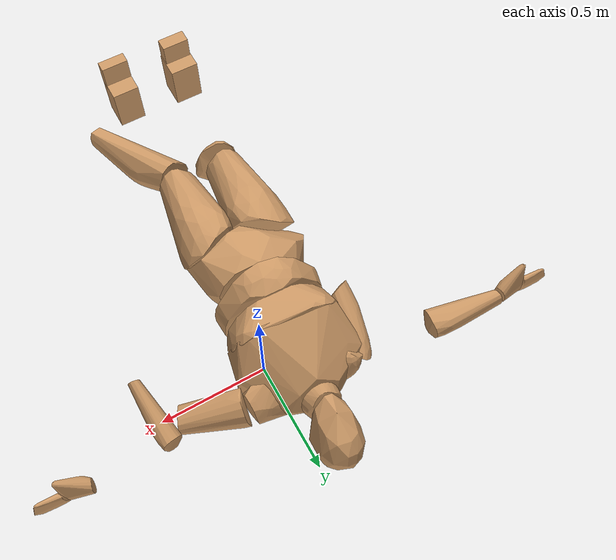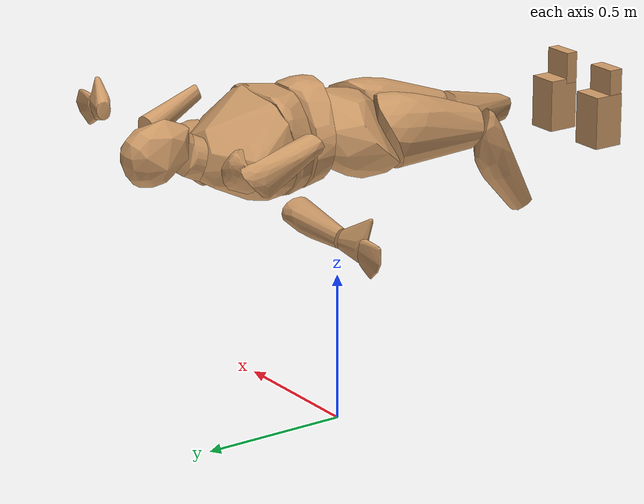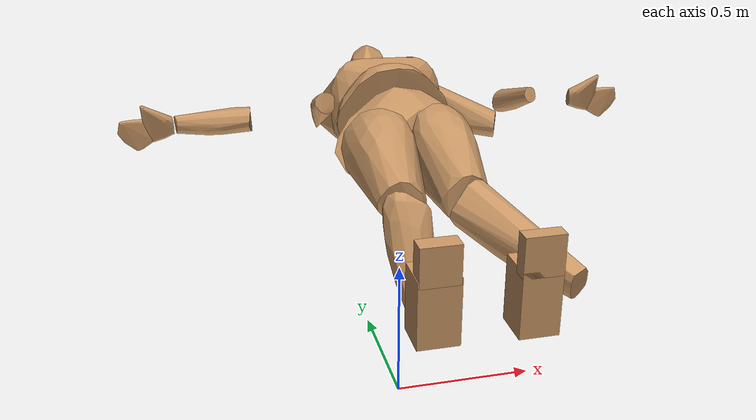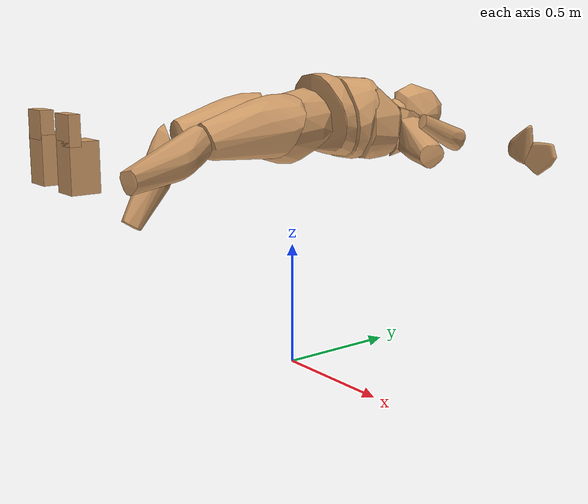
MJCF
<?xml version='1.0' encoding='utf-8'?>
<mujoco model="humanoid">
  <compiler coordinate="local" meshdir="asset/smpl_meshes/geom" />
  <default>
    <joint damping="0.0" armature="0.1" stiffness="10" limited="true" />
    <geom conaffinity="1" condim="3" contype="7" margin="0.001" rgba="0.8 0.6 .4 1" />
  <joint damping="0.01" armature="0.1" stiffness="10" limited="true" /><geom conaffinity="1" condim="3" contype="7" margin="0.001" rgba="0.8 0.6 .4 1" type="box" size="0.01 0.01 0.01" /><joint damping="1" armature="0.1" stiffness="10" /></default>
  <asset>
    <texture type="skybox" builtin="gradient" rgb1=".4 .5 .6" rgb2="0 0 0" width="100" height="100" />
    <texture builtin="flat" height="1278" mark="cross" markrgb="1 1 1" name="texgeom" random="0.01" rgb1="0.8 0.6 0.4" rgb2="0.8 0.6 0.4" type="cube" width="127" />
    <texture builtin="checker" height="100" name="texplane" rgb1="0 0 0" rgb2="0.8 0.8 0.8" type="2d" width="100" />
    <material name="MatPlane" reflectance="0.5" shininess="1" specular="1" texrepeat="60 60" texture="texplane" />
    <material name="geom" texture="texgeom" texuniform="true" />
    <mesh file="Pelvis.stl" name="Pelvis_mesh" />
    <mesh file="L_Hip.stl" name="L_Hip_mesh" />
    <mesh file="R_Hip.stl" name="R_Hip_mesh" />
    <mesh file="Torso.stl" name="Torso_mesh" />
    <mesh file="L_Knee.stl" name="L_Knee_mesh" />
    <mesh file="R_Knee.stl" name="R_Knee_mesh" />
    <mesh file="Spine.stl" name="Spine_mesh" />
    <mesh file="L_Ankle.stl" name="L_Ankle_mesh" />
    <mesh file="R_Ankle.stl" name="R_Ankle_mesh" />
    <mesh file="Chest.stl" name="Chest_mesh" />
    <mesh file="L_Toe.stl" name="L_Toe_mesh" />
    <mesh file="R_Toe.stl" name="R_Toe_mesh" />
    <mesh file="Neck.stl" name="Neck_mesh" />
    <mesh file="L_Thorax.stl" name="L_Thorax_mesh" />
    <mesh file="R_Thorax.stl" name="R_Thorax_mesh" />
    <mesh file="Head.stl" name="Head_mesh" />
    <mesh file="L_Shoulder.stl" name="L_Shoulder_mesh" />
    <mesh file="R_Shoulder.stl" name="R_Shoulder_mesh" />
    <mesh file="L_Elbow.stl" name="L_Elbow_mesh" />
    <mesh file="R_Elbow.stl" name="R_Elbow_mesh" />
    <mesh file="L_Wrist.stl" name="L_Wrist_mesh" />
    <mesh file="R_Wrist.stl" name="R_Wrist_mesh" />
    <mesh file="L_Hand.stl" name="L_Hand_mesh" />
    <mesh file="R_Hand.stl" name="R_Hand_mesh" />
  </asset>
  <worldbody>
    <body name="Pelvis" pos="0 0 1.0">
      <freejoint name="Pelvis" />
      <geom type="mesh" mesh="Pelvis_mesh" density="1000" contype="1" conaffinity="1" condim="3" margin="0.001" />
      <body name="L_Hip" pos="0.0748 -0.0975 -0.0052">
        <joint name="L_Hip_x" type="hinge" pos="0 0 0" axis="1 0 0" user="800 80 1 500" armature="0.1" range="-120.0000 30.0000" damping="0.1" stiffness="10" limited="true" />
        <joint name="L_Hip_y" type="hinge" pos="0 0 0" axis="0 1 0" user="800 80 1 500" armature="0.1" range="-30.0000 45.0000" damping="0.1" stiffness="10" limited="true" />
        <joint name="L_Hip_z" type="hinge" pos="0 0 0" axis="0 0 1" user="800 80 1 500" armature="0.1" range="-15.0000 45.0000" damping="0.1" stiffness="10" limited="true" />
        <geom type="mesh" mesh="L_Hip_mesh" density="1000" contype="1" conaffinity="1" condim="3" margin="0.001" />
        <body name="L_Knee" pos="0.0117 -0.3951 -0.0362">
          <joint name="L_Knee_x" type="hinge" pos="0 0 0" axis="1 0 0" user="800 80 1 500" armature="0.1" range="-10.0000 135.0000" damping="0.1" stiffness="10" limited="true" />
          <joint name="L_Knee_y" type="hinge" pos="0 0 0" axis="0 1 0" user="800 80 1 500" armature="0.1" range="-5.0000 5.0000" damping="0.1" stiffness="10" limited="true" />
          <joint name="L_Knee_z" type="hinge" pos="0 0 0" axis="0 0 1" user="800 80 1 500" armature="0.1" range="-5.0000 5.0000" damping="0.1" stiffness="10" limited="true" />
          <geom type="mesh" mesh="L_Knee_mesh" density="1000" contype="1" conaffinity="1" condim="3" margin="0.001" />
          <body name="L_Ankle" pos="-0.0329 -0.428 -0.0721">
            <joint name="L_Ankle_x" type="hinge" pos="0 0 0" axis="1 0 0" user="800 80 1 500" armature="0.1" range="-30.0000 45.0000" damping="0.1" stiffness="10" limited="true" />
            <joint name="L_Ankle_y" type="hinge" pos="0 0 0" axis="0 1 0" user="800 80 1 500" armature="0.1" range="-20.0000 20.0000" damping="0.1" stiffness="10" limited="true" />
            <joint name="L_Ankle_z" type="hinge" pos="0 0 0" axis="0 0 1" user="800 80 1 500" armature="0.1" range="-15.0000 15.0000" damping="0.1" stiffness="10" limited="true" />
            <geom density="442.116764" type="box" pos="0.0191 -0.0303 0.0216" size="0.0506 0.0525 0.0877" quat="1.0000 0.0000 0.0000 0.0000" />
            <body name="L_Toe" pos="0.0224 -0.0685 0.1203">
              <joint name="L_Toe_x" type="hinge" pos="0 0 0" axis="1 0 0" user="500 50 1 500" armature="0.1" range="-10.0000 10.0000" damping="0.1" stiffness="10" limited="true" />
              <joint name="L_Toe_y" type="hinge" pos="0 0 0" axis="0 1 0" user="500 50 1 500" armature="0.1" range="-10.0000 10.0000" damping="0.1" stiffness="10" limited="true" />
              <joint name="L_Toe_z" type="hinge" pos="0 0 0" axis="0 0 1" user="500 50 1 500" armature="0.1" range="-10.0000 10.0000" damping="0.1" stiffness="10" limited="true" />
              <geom density="391.513587" type="box" pos="-0.0034 0.0066 0.0252" size="0.0508 0.0209 0.0529" quat="1.0000 0.0000 0.0000 0.0000" />
            </body>
          </body>
        </body>
      </body>
      <body name="R_Hip" pos="-0.0824 -0.0905 -0.0033">
        <joint name="R_Hip_x" type="hinge" pos="0 0 0" axis="1 0 0" user="800 80 1 500" armature="0.1" range="-120.0000 30.0000" damping="0.1" stiffness="10" limited="true" />
        <joint name="R_Hip_y" type="hinge" pos="0 0 0" axis="0 1 0" user="800 80 1 500" armature="0.1" range="-45.0000 30.0000" damping="0.1" stiffness="10" limited="true" />
        <joint name="R_Hip_z" type="hinge" pos="0 0 0" axis="0 0 1" user="800 80 1 500" armature="0.1" range="-45.0000 15.0000" damping="0.1" stiffness="10" limited="true" />
        <geom type="mesh" mesh="R_Hip_mesh" density="1000" contype="1" conaffinity="1" condim="3" margin="0.001" />
        <body name="R_Knee" pos="-0.057 -0.3992 -0.0398">
          <joint name="R_Knee_x" type="hinge" pos="0 0 0" axis="1 0 0" user="800 80 1 500" armature="0.1" range="-10.0000 135.0000" damping="0.1" stiffness="10" limited="true" />
          <joint name="R_Knee_y" type="hinge" pos="0 0 0" axis="0 1 0" user="800 80 1 500" armature="0.1" range="-5.0000 5.0000" damping="0.1" stiffness="10" limited="true" />
          <joint name="R_Knee_z" type="hinge" pos="0 0 0" axis="0 0 1" user="800 80 1 500" armature="0.1" range="-5.0000 5.0000" damping="0.1" stiffness="10" limited="true" />
          <geom type="mesh" mesh="R_Knee_mesh" density="1000" contype="1" conaffinity="1" condim="3" margin="0.001" />
          <body name="R_Ankle" pos="-0.0049 -0.4315 -0.0702">
            <joint name="R_Ankle_x" type="hinge" pos="0 0 0" axis="1 0 0" user="800 80 1 500" armature="0.1" range="-30.0000 45.0000" damping="0.1" stiffness="10" limited="true" />
            <joint name="R_Ankle_y" type="hinge" pos="0 0 0" axis="0 1 0" user="800 80 1 500" armature="0.1" range="-20.0000 20.0000" damping="0.1" stiffness="10" limited="true" />
            <joint name="R_Ankle_z" type="hinge" pos="0 0 0" axis="0 0 1" user="800 80 1 500" armature="0.1" range="-15.0000 15.0000" damping="0.1" stiffness="10" limited="true" />
            <geom density="420.537497" type="box" pos="-0.0271 -0.0214 0.0231" size="0.0534 0.0521 0.0886" quat="1.0000 0.0000 0.0000 0.0000" />
            <body name="R_Toe" pos="-0.0354 -0.0572 0.1241">
              <joint name="R_Toe_x" type="hinge" pos="0 0 0" axis="1 0 0" user="500 50 1 500" armature="0.1" range="-10.0000 10.0000" damping="0.1" stiffness="10" limited="true" />
              <joint name="R_Toe_y" type="hinge" pos="0 0 0" axis="0 1 0" user="500 50 1 500" armature="0.1" range="-10.0000 10.0000" damping="0.1" stiffness="10" limited="true" />
              <joint name="R_Toe_z" type="hinge" pos="0 0 0" axis="0 0 1" user="500 50 1 500" armature="0.1" range="-10.0000 10.0000" damping="0.1" stiffness="10" limited="true" />
              <geom density="411.118244" type="box" pos="0.0084 0.0083 0.0211" size="0.0507 0.0247 0.0511" quat="1.0000 0.0000 0.0000 0.0000" />
            </body>
          </body>
        </body>
      </body>
      <body name="Torso" pos="0.0035 0.1118 -0.0291">
        <joint name="Torso_x" type="hinge" pos="0 0 0" axis="1 0 0" user="1000 100 1 500" armature="0.1" range="-25.0000 25.0000" damping="0.1" stiffness="10" limited="true" />
        <joint name="Torso_y" type="hinge" pos="0 0 0" axis="0 1 0" user="1000 100 1 500" armature="0.1" range="-15.0000 15.0000" damping="0.1" stiffness="10" limited="true" />
        <joint name="Torso_z" type="hinge" pos="0 0 0" axis="0 0 1" user="1000 100 1 500" armature="0.1" range="-25.0000 25.0000" damping="0.1" stiffness="10" limited="true" />
        <geom type="mesh" mesh="Torso_mesh" density="1000" contype="1" conaffinity="1" condim="3" margin="0.001" />
        <body name="Spine" pos="0.0094 0.1161 -0.0009">
          <joint name="Spine_x" type="hinge" pos="0 0 0" axis="1 0 0" user="1000 100 1 500" armature="0.1" range="-30.0000 30.0000" damping="0.1" stiffness="10" limited="true" />
          <joint name="Spine_y" type="hinge" pos="0 0 0" axis="0 1 0" user="1000 100 1 500" armature="0.1" range="-20.0000 20.0000" damping="0.1" stiffness="10" limited="true" />
          <joint name="Spine_z" type="hinge" pos="0 0 0" axis="0 0 1" user="1000 100 1 500" armature="0.1" range="-30.0000 30.0000" damping="0.1" stiffness="10" limited="true" />
          <geom type="mesh" mesh="Spine_mesh" density="1000" contype="1" conaffinity="1" condim="3" margin="0.001" />
          <body name="Chest" pos="0.0041 0.049 0.035">
            <joint name="Chest_x" type="hinge" pos="0 0 0" axis="1 0 0" user="1000 100 1 500" armature="0.1" range="-20.0000 20.0000" damping="0.1" stiffness="10" limited="true" />
            <joint name="Chest_y" type="hinge" pos="0 0 0" axis="0 1 0" user="1000 100 1 500" armature="0.1" range="-15.0000 15.0000" damping="0.1" stiffness="10" limited="true" />
            <joint name="Chest_z" type="hinge" pos="0 0 0" axis="0 0 1" user="1000 100 1 500" armature="0.1" range="-25.0000 25.0000" damping="0.1" stiffness="10" limited="true" />
            <geom type="mesh" mesh="Chest_mesh" density="1000" contype="1" conaffinity="1" condim="3" margin="0.001" />
            <body name="Neck" pos="0.0084 0.231 -0.0381">
              <joint name="Neck_x" type="hinge" pos="0 0 0" axis="1 0 0" user="500 50 1 250" armature="0.1" range="-40.0000 50.0000" damping="0.1" stiffness="10" limited="true" />
              <joint name="Neck_y" type="hinge" pos="0 0 0" axis="0 1 0" user="500 50 1 250" armature="0.1" range="-35.0000 35.0000" damping="0.1" stiffness="10" limited="true" />
              <joint name="Neck_z" type="hinge" pos="0 0 0" axis="0 0 1" user="500 50 1 250" armature="0.1" range="-70.0000 70.0000" damping="0.1" stiffness="10" limited="true" />
              <geom type="mesh" mesh="Neck_mesh" density="1000" contype="1" conaffinity="1" condim="3" margin="0.001" />
              <body name="Head" pos="0.0044 0.0633 0.0616">
                <joint name="Head_x" type="hinge" pos="0 0 0" axis="1 0 0" user="500 50 1 250" armature="0.1" range="-30.0000 30.0000" damping="0.1" stiffness="10" limited="true" />
                <joint name="Head_y" type="hinge" pos="0 0 0" axis="0 1 0" user="500 50 1 250" armature="0.1" range="-25.0000 25.0000" damping="0.1" stiffness="10" limited="true" />
                <joint name="Head_z" type="hinge" pos="0 0 0" axis="0 0 1" user="500 50 1 250" armature="0.1" range="-50.0000 50.0000" damping="0.1" stiffness="10" limited="true" />
                <geom type="mesh" mesh="Head_mesh" density="1000" contype="1" conaffinity="1" condim="3" margin="0.001" />
              </body>
            </body>
            <body name="L_Thorax" pos="0.096 0.1277 -0.0344">
              <joint name="L_Thorax_x" type="hinge" pos="0 0 0" axis="1 0 0" user="500 50 1 500" armature="0.1" range="-45.0000 45.0000" damping="0.1" stiffness="10" limited="true" />
              <joint name="L_Thorax_y" type="hinge" pos="0 0 0" axis="0 1 0" user="500 50 1 500" armature="0.1" range="-30.0000 30.0000" damping="0.1" stiffness="10" limited="true" />
              <joint name="L_Thorax_z" type="hinge" pos="0 0 0" axis="0 0 1" user="500 50 1 500" armature="0.1" range="-40.0000 40.0000" damping="0.1" stiffness="10" limited="true" />
              <geom type="mesh" mesh="L_Thorax_mesh" density="1000" contype="1" conaffinity="1" condim="3" margin="0.001" />
              <body name="L_Shoulder" pos="0.1002 0.0314 -0.0112">
                <joint name="L_Shoulder_x" type="hinge" pos="0 0 0" axis="1 0 0" user="500 50 1 500" armature="0.1" range="-90.0000 90.0000" damping="0.1" stiffness="10" limited="true" />
                <joint name="L_Shoulder_y" type="hinge" pos="0 0 0" axis="0 1 0" user="500 50 1 500" armature="0.1" range="-135.0000 30.0000" damping="0.1" stiffness="10" limited="true" />
                <joint name="L_Shoulder_z" type="hinge" pos="0 0 0" axis="0 0 1" user="500 50 1 500" armature="0.1" range="-40.0000 120.0000" damping="0.1" stiffness="10" limited="true" />
                <geom type="mesh" mesh="L_Shoulder_mesh" density="1000" contype="1" conaffinity="1" condim="3" margin="0.001" />
                <body name="L_Elbow" pos="0.2827 -0.0271 -0.032">
                  <joint name="L_Elbow_x" type="hinge" pos="0 0 0" axis="1 0 0" user="500 50 1 150" armature="0.1" range="-5.0000 5.0000" damping="0.1" stiffness="10" limited="true" />
                  <joint name="L_Elbow_y" type="hinge" pos="0 0 0" axis="0 1 0" user="500 50 1 150" armature="0.1" range="-135.0000 5.0000" damping="0.1" stiffness="10" limited="true" />
                  <joint name="L_Elbow_z" type="hinge" pos="0 0 0" axis="0 0 1" user="500 50 1 150" armature="0.1" range="-5.0000 5.0000" damping="0.1" stiffness="10" limited="true" />
                  <geom type="mesh" mesh="L_Elbow_mesh" density="1000" contype="1" conaffinity="1" condim="3" margin="0.001" />
                  <body name="L_Wrist" pos="0.2663 -0.0003 0.0051">
                    <joint name="L_Wrist_x" type="hinge" pos="0 0 0" axis="1 0 0" user="300 30 1 150" armature="0.1" range="-20.0000 45.0000" damping="0.1" stiffness="10" limited="true" />
                    <joint name="L_Wrist_y" type="hinge" pos="0 0 0" axis="0 1 0" user="300 30 1 150" armature="0.1" range="-70.0000 70.0000" damping="0.1" stiffness="10" limited="true" />
                    <joint name="L_Wrist_z" type="hinge" pos="0 0 0" axis="0 0 1" user="300 30 1 150" armature="0.1" range="-30.0000 30.0000" damping="0.1" stiffness="10" limited="true" />
                    <geom type="mesh" mesh="L_Wrist_mesh" density="1000" contype="1" conaffinity="1" condim="3" margin="0.001" />
                    <body name="L_Hand" pos="0.0885 -0.0133 -0.0145">
                      <joint name="L_Hand_x" type="hinge" pos="0 0 0" axis="1 0 0" user="300 30 1 150" armature="0.1" range="-45.0000 45.0000" damping="0.1" stiffness="10" limited="true" />
                      <joint name="L_Hand_y" type="hinge" pos="0 0 0" axis="0 1 0" user="300 30 1 150" armature="0.1" range="-20.0000 20.0000" damping="0.1" stiffness="10" limited="true" />
                      <joint name="L_Hand_z" type="hinge" pos="0 0 0" axis="0 0 1" user="300 30 1 150" armature="0.1" range="-20.0000 20.0000" damping="0.1" stiffness="10" limited="true" />
                      <geom type="mesh" mesh="L_Hand_mesh" density="1000" contype="1" conaffinity="1" condim="3" margin="0.001" />
                    </body>
                  </body>
                </body>
              </body>
            </body>
            <body name="R_Thorax" pos="-0.0845 0.1345 -0.0416">
              <joint name="R_Thorax_x" type="hinge" pos="0 0 0" axis="1 0 0" user="500 50 1 150" armature="0.1" range="-45.0000 45.0000" damping="0.1" stiffness="10" limited="true" />
              <joint name="R_Thorax_y" type="hinge" pos="0 0 0" axis="0 1 0" user="500 50 1 150" armature="0.1" range="-30.0000 30.0000" damping="0.1" stiffness="10" limited="true" />
              <joint name="R_Thorax_z" type="hinge" pos="0 0 0" axis="0 0 1" user="500 50 1 150" armature="0.1" range="-40.0000 40.0000" damping="0.1" stiffness="10" limited="true" />
              <geom type="mesh" mesh="R_Thorax_mesh" density="1000" contype="1" conaffinity="1" condim="3" margin="0.001" />
              <body name="R_Shoulder" pos="-0.0981 0.0419 -0.0135">
                <joint name="R_Shoulder_x" type="hinge" pos="0 0 0" axis="1 0 0" user="500 50 1 250" armature="0.1" range="-90.0000 90.0000" damping="0.1" stiffness="10" limited="true" />
                <joint name="R_Shoulder_y" type="hinge" pos="0 0 0" axis="0 1 0" user="500 50 1 250" armature="0.1" range="-30.0000 135.0000" damping="0.1" stiffness="10" limited="true" />
                <joint name="R_Shoulder_z" type="hinge" pos="0 0 0" axis="0 0 1" user="500 50 1 250" armature="0.1" range="-120.0000 40.0000" damping="0.1" stiffness="10" limited="true" />
                <geom type="mesh" mesh="R_Shoulder_mesh" density="1000" contype="1" conaffinity="1" condim="3" margin="0.001" />
                <body name="R_Elbow" pos="-0.2746 -0.0005 -0.0322">
                  <joint name="R_Elbow_x" type="hinge" pos="0 0 0" axis="1 0 0" user="500 50 1 150" armature="0.1" range="-5.0000 5.0000" damping="0.1" stiffness="10" limited="true" />
                  <joint name="R_Elbow_y" type="hinge" pos="0 0 0" axis="0 1 0" user="500 50 1 150" armature="0.1" range="-5.0000 135.0000" damping="0.1" stiffness="10" limited="true" />
                  <joint name="R_Elbow_z" type="hinge" pos="0 0 0" axis="0 0 1" user="500 50 1 150" armature="0.1" range="-5.0000 5.0000" damping="0.1" stiffness="10" limited="true" />
                  <geom type="mesh" mesh="R_Elbow_mesh" density="1000" contype="1" conaffinity="1" condim="3" margin="0.001" />
                  <body name="R_Wrist" pos="-0.2695 0.0251 -0.0046">
                    <joint name="R_Wrist_x" type="hinge" pos="0 0 0" axis="1 0 0" user="300 30 1 150" armature="0.1" range="-20.0000 45.0000" damping="0.1" stiffness="10" limited="true" />
                    <joint name="R_Wrist_y" type="hinge" pos="0 0 0" axis="0 1 0" user="300 30 1 150" armature="0.1" range="-70.0000 70.0000" damping="0.1" stiffness="10" limited="true" />
                    <joint name="R_Wrist_z" type="hinge" pos="0 0 0" axis="0 0 1" user="300 30 1 150" armature="0.1" range="-30.0000 30.0000" damping="0.1" stiffness="10" limited="true" />
                    <geom type="mesh" mesh="R_Wrist_mesh" density="1000" contype="1" conaffinity="1" condim="3" margin="0.001" />
                    <body name="R_Hand" pos="-0.0886 -0.0027 -0.0128">
                      <joint name="R_Hand_x" type="hinge" pos="0 0 0" axis="1 0 0" user="300 30 1 150" armature="0.1" range="-45.0000 45.0000" damping="0.1" stiffness="10" limited="true" />
                      <joint name="R_Hand_y" type="hinge" pos="0 0 0" axis="0 1 0" user="300 30 1 150" armature="0.1" range="-20.0000 20.0000" damping="0.1" stiffness="10" limited="true" />
                      <joint name="R_Hand_z" type="hinge" pos="0 0 0" axis="0 0 1" user="300 30 1 150" armature="0.1" range="-20.0000 20.0000" damping="0.1" stiffness="10" limited="true" />
                      <geom type="mesh" mesh="R_Hand_mesh" density="1000" contype="1" conaffinity="1" condim="3" margin="0.001" />
                    </body>
                  </body>
                </body>
              </body>
            </body>
          </body>
        </body>
      </body>
    </body>
  </worldbody>
  <actuator>
    <motor name="L_Hip_x" joint="L_Hip_x" gear="1" ctrlrange="-200 200" />
    <motor name="L_Hip_y" joint="L_Hip_y" gear="1" ctrlrange="-200 200" />
    <motor name="L_Hip_z" joint="L_Hip_z" gear="1" ctrlrange="-200 200" />
    <motor name="L_Knee_x" joint="L_Knee_x" gear="1" ctrlrange="-200 200" />
    <motor name="L_Knee_y" joint="L_Knee_y" gear="1" ctrlrange="-200 200" />
    <motor name="L_Knee_z" joint="L_Knee_z" gear="1" ctrlrange="-200 200" />
    <motor name="L_Ankle_x" joint="L_Ankle_x" gear="1" ctrlrange="-200 200" />
    <motor name="L_Ankle_y" joint="L_Ankle_y" gear="1" ctrlrange="-200 200" />
    <motor name="L_Ankle_z" joint="L_Ankle_z" gear="1" ctrlrange="-200 200" />
    <motor name="L_Toe_x" joint="L_Toe_x" gear="1" ctrlrange="-200 200" />
    <motor name="L_Toe_y" joint="L_Toe_y" gear="1" ctrlrange="-200 200" />
    <motor name="L_Toe_z" joint="L_Toe_z" gear="1" ctrlrange="-200 200" />
    <motor name="R_Hip_x" joint="R_Hip_x" gear="1" ctrlrange="-200 200" />
    <motor name="R_Hip_y" joint="R_Hip_y" gear="1" ctrlrange="-200 200" />
    <motor name="R_Hip_z" joint="R_Hip_z" gear="1" ctrlrange="-200 200" />
    <motor name="R_Knee_x" joint="R_Knee_x" gear="1" ctrlrange="-200 200" />
    <motor name="R_Knee_y" joint="R_Knee_y" gear="1" ctrlrange="-200 200" />
    <motor name="R_Knee_z" joint="R_Knee_z" gear="1" ctrlrange="-200 200" />
    <motor name="R_Ankle_x" joint="R_Ankle_x" gear="1" ctrlrange="-200 200" />
    <motor name="R_Ankle_y" joint="R_Ankle_y" gear="1" ctrlrange="-200 200" />
    <motor name="R_Ankle_z" joint="R_Ankle_z" gear="1" ctrlrange="-200 200" />
    <motor name="R_Toe_x" joint="R_Toe_x" gear="1" ctrlrange="-200 200" />
    <motor name="R_Toe_y" joint="R_Toe_y" gear="1" ctrlrange="-200 200" />
    <motor name="R_Toe_z" joint="R_Toe_z" gear="1" ctrlrange="-200 200" />
    <motor name="Torso_x" joint="Torso_x" gear="1" ctrlrange="-200 200" />
    <motor name="Torso_y" joint="Torso_y" gear="1" ctrlrange="-200 200" />
    <motor name="Torso_z" joint="Torso_z" gear="1" ctrlrange="-200 200" />
    <motor name="Spine_x" joint="Spine_x" gear="1" ctrlrange="-200 200" />
    <motor name="Spine_y" joint="Spine_y" gear="1" ctrlrange="-200 200" />
    <motor name="Spine_z" joint="Spine_z" gear="1" ctrlrange="-200 200" />
    <motor name="Chest_x" joint="Chest_x" gear="1" ctrlrange="-200 200" />
    <motor name="Chest_y" joint="Chest_y" gear="1" ctrlrange="-200 200" />
    <motor name="Chest_z" joint="Chest_z" gear="1" ctrlrange="-200 200" />
    <motor name="Neck_x" joint="Neck_x" gear="1" ctrlrange="-200 200" />
    <motor name="Neck_y" joint="Neck_y" gear="1" ctrlrange="-200 200" />
    <motor name="Neck_z" joint="Neck_z" gear="1" ctrlrange="-200 200" />
    <motor name="Head_x" joint="Head_x" gear="1" ctrlrange="-200 200" />
    <motor name="Head_y" joint="Head_y" gear="1" ctrlrange="-200 200" />
    <motor name="Head_z" joint="Head_z" gear="1" ctrlrange="-200 200" />
    <motor name="L_Thorax_x" joint="L_Thorax_x" gear="1" ctrlrange="-200 200" />
    <motor name="L_Thorax_y" joint="L_Thorax_y" gear="1" ctrlrange="-200 200" />
    <motor name="L_Thorax_z" joint="L_Thorax_z" gear="1" ctrlrange="-200 200" />
    <motor name="L_Shoulder_x" joint="L_Shoulder_x" gear="1" ctrlrange="-200 200" />
    <motor name="L_Shoulder_y" joint="L_Shoulder_y" gear="1" ctrlrange="-200 200" />
    <motor name="L_Shoulder_z" joint="L_Shoulder_z" gear="1" ctrlrange="-200 200" />
    <motor name="L_Elbow_x" joint="L_Elbow_x" gear="1" ctrlrange="-200 200" />
    <motor name="L_Elbow_y" joint="L_Elbow_y" gear="1" ctrlrange="-200 200" />
    <motor name="L_Elbow_z" joint="L_Elbow_z" gear="1" ctrlrange="-200 200" />
    <motor name="L_Wrist_x" joint="L_Wrist_x" gear="1" ctrlrange="-200 200" />
    <motor name="L_Wrist_y" joint="L_Wrist_y" gear="1" ctrlrange="-200 200" />
    <motor name="L_Wrist_z" joint="L_Wrist_z" gear="1" ctrlrange="-200 200" />
    <motor name="L_Hand_x" joint="L_Hand_x" gear="1" ctrlrange="-200 200" />
    <motor name="L_Hand_y" joint="L_Hand_y" gear="1" ctrlrange="-200 200" />
    <motor name="L_Hand_z" joint="L_Hand_z" gear="1" ctrlrange="-200 200" />
    <motor name="R_Thorax_x" joint="R_Thorax_x" gear="1" ctrlrange="-200 200" />
    <motor name="R_Thorax_y" joint="R_Thorax_y" gear="1" ctrlrange="-200 200" />
    <motor name="R_Thorax_z" joint="R_Thorax_z" gear="1" ctrlrange="-200 200" />
    <motor name="R_Shoulder_x" joint="R_Shoulder_x" gear="1" ctrlrange="-200 200" />
    <motor name="R_Shoulder_y" joint="R_Shoulder_y" gear="1" ctrlrange="-200 200" />
    <motor name="R_Shoulder_z" joint="R_Shoulder_z" gear="1" ctrlrange="-200 200" />
    <motor name="R_Elbow_x" joint="R_Elbow_x" gear="1" ctrlrange="-200 200" />
    <motor name="R_Elbow_y" joint="R_Elbow_y" gear="1" ctrlrange="-200 200" />
    <motor name="R_Elbow_z" joint="R_Elbow_z" gear="1" ctrlrange="-200 200" />
    <motor name="R_Wrist_x" joint="R_Wrist_x" gear="1" ctrlrange="-200 200" />
    <motor name="R_Wrist_y" joint="R_Wrist_y" gear="1" ctrlrange="-200 200" />
    <motor name="R_Wrist_z" joint="R_Wrist_z" gear="1" ctrlrange="-200 200" />
    <motor name="R_Hand_x" joint="R_Hand_x" gear="1" ctrlrange="-200 200" />
    <motor name="R_Hand_y" joint="R_Hand_y" gear="1" ctrlrange="-200 200" />
    <motor name="R_Hand_z" joint="R_Hand_z" gear="1" ctrlrange="-200 200" />
  </actuator>
  <contact>
    <exclude body1="Torso" body2="Chest" />
    <exclude body1="Head" body2="Chest" />
    <exclude body1="R_Knee" body2="R_Toe" />
    <exclude body1="R_Knee" body2="L_Ankle" />
    <exclude body1="R_Knee" body2="L_Toe" />
    <exclude body1="L_Knee" body2="L_Toe" />
    <exclude body1="L_Knee" body2="R_Ankle" />
    <exclude body1="L_Knee" body2="R_Toe" />
    <exclude body1="L_Shoulder" body2="Chest" />
    <exclude body1="R_Shoulder" body2="Chest" />
  </contact>
  <sensor />
  <size njmax="2500" nconmax="500" />
<compiler angle="degree" autolimits="true" /><statistic meansize="0.05" /></mujoco>
